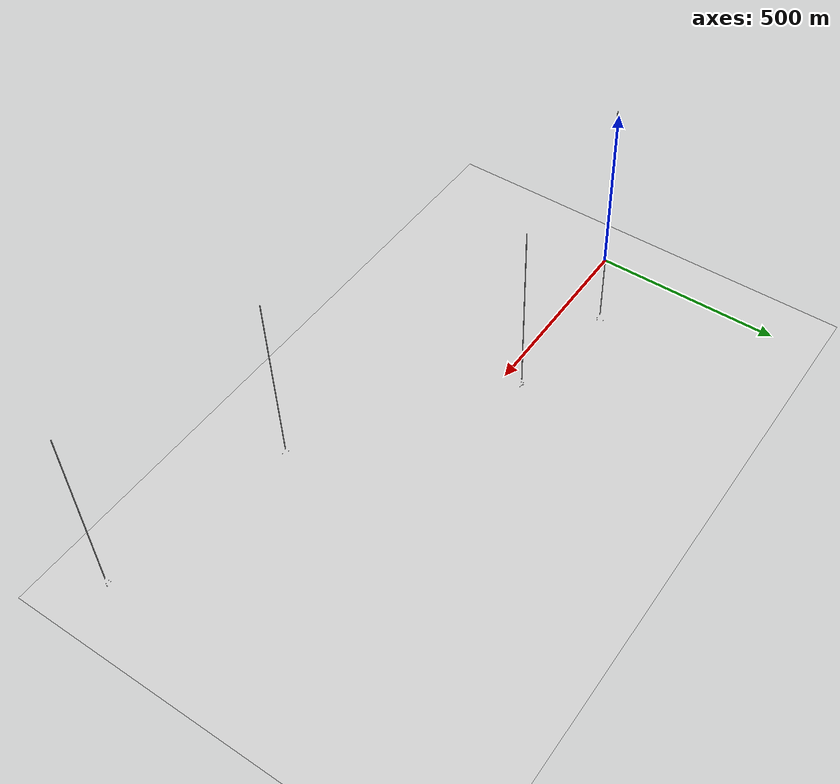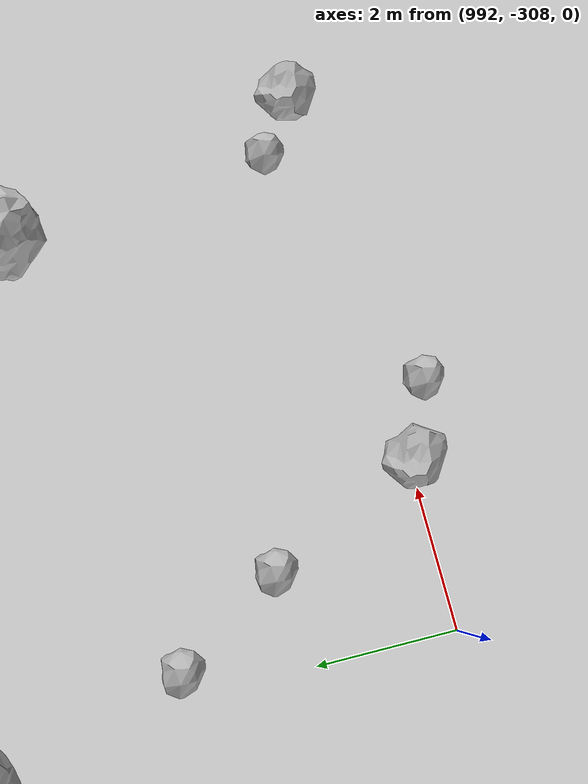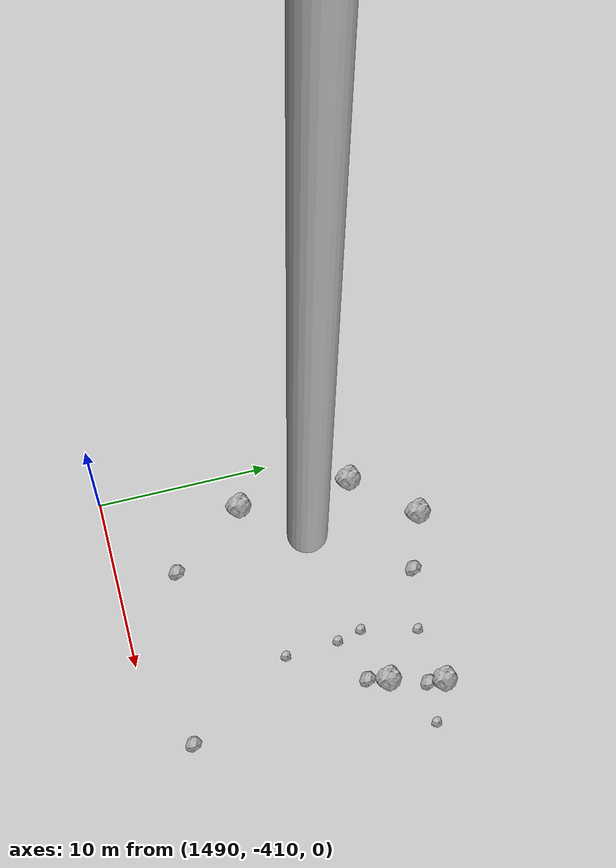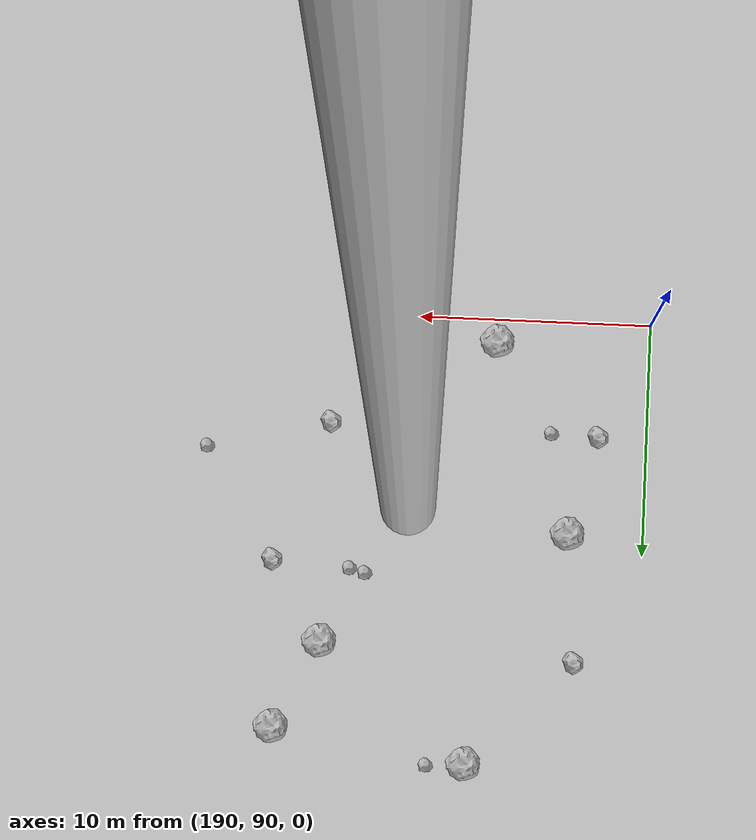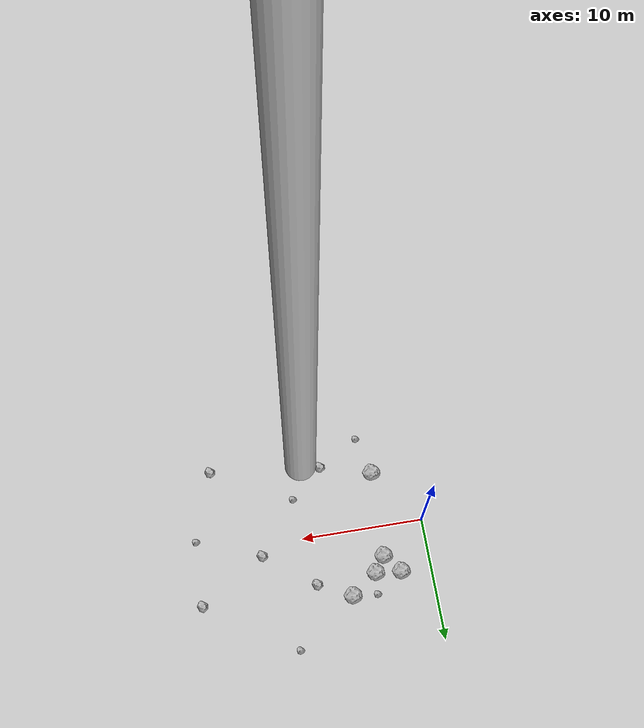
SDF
<?xml version="1.0" ?>
<sdf version="1.6">
  <world name="default">

    <include>
      <uri>model://custom_ground</uri>
    </include>

    <include>
      <uri>model://sun</uri>
    </include>

    <spherical_coordinates>
      <surface_model>EARTH_WGS84</surface_model>
      <latitude_deg>38.161479</latitude_deg>
      <longitude_deg>-122.454630</longitude_deg>
      <elevation>488.0</elevation>
      <heading_deg>90</heading_deg>
    </spherical_coordinates>

    <model name="rock1_0_0">
      <include>
        <uri>model://rock1</uri>
        <pose>4.572853619748891 3.7947015542452753 0.5 0 0 0</pose>
      </include>
    </model>
    <model name="rock1_0_1">
      <include>
        <uri>model://rock1</uri>
        <pose>2.5023378603880175 3.999099683099427 0.5 0 0 0</pose>
      </include>
    </model>
    <model name="rock1_0_2">
      <include>
        <uri>model://rock1</uri>
        <pose>3.686681151769118 2.5030829227830687 0.5 0 0 0</pose>
      </include>
    </model>
    <model name="rock1_0_3">
      <include>
        <uri>model://rock1</uri>
        <pose>3.3944118400449175 -4.6390847969078575 0.5 0 0 0</pose>
      </include>
    </model>
    <model name="rock1_0_4">
      <include>
        <uri>model://rock1</uri>
        <pose>6.734505600800804 5.365693586576592 0.5 0 0 0</pose>
      </include>
    </model>
    <model name="rock2_0_0">
      <include>
        <uri>model://rock2</uri>
        <pose>16.79316029267475 -6.899242191881035 0.3 0 0 0</pose>
      </include>
    </model>
    <model name="rock2_0_1">
      <include>
        <uri>model://rock2</uri>
        <pose>7.595345049754818 -5.85508658687846 0.3 0 0 0</pose>
      </include>
    </model>
    <model name="rock2_0_2">
      <include>
        <uri>model://rock2</uri>
        <pose>9.424452033437575 3.9959151317799027 0.3 0 0 0</pose>
      </include>
    </model>
    <model name="rock2_0_3">
      <include>
        <uri>model://rock2</uri>
        <pose>13.502902633631159 0.9263732171216645 0.3 0 0 0</pose>
      </include>
    </model>
    <model name="rock2_0_4">
      <include>
        <uri>model://rock2</uri>
        <pose>18.882993633867912 4.25743976970101 0.3 0 0 0</pose>
      </include>
    </model>
    <model name="rock3_0_0">
      <include>
        <uri>model://rock3</uri>
        <pose>10.241285209226207 -3.4841964100783063 0.2 0 0 0</pose>
      </include>
    </model>
    <model name="rock3_0_1">
      <include>
        <uri>model://rock3</uri>
        <pose>4.142287087473426 -7.8974524473212675 0.2 0 0 0</pose>
      </include>
    </model>
    <model name="rock3_0_2">
      <include>
        <uri>model://rock3</uri>
        <pose>18.705460818679594 -1.1685540688278895 0.2 0 0 0</pose>
      </include>
    </model>
    <model name="rock3_0_3">
      <include>
        <uri>model://rock3</uri>
        <pose>11.609357218198435 8.980632921697335 0.2 0 0 0</pose>
      </include>
    </model>
    <model name="rock3_0_4">
      <include>
        <uri>model://rock3</uri>
        <pose>4.684560282595296 5.518325599979288 0.2 0 0 0</pose>
      </include>
    </model>
    <model name="rock1_1_0">
      <include>
        <uri>model://rock1</uri>
        <pose>197.33879903890994 109.20686792613427 0.5 0 0 0</pose>
      </include>
    </model>
    <model name="rock1_1_1">
      <include>
        <uri>model://rock1</uri>
        <pose>205.62579757789794 107.9570608748534 0.5 0 0 0</pose>
      </include>
    </model>
    <model name="rock1_1_2">
      <include>
        <uri>model://rock1</uri>
        <pose>203.73503929779775 104.2280103980762 0.5 0 0 0</pose>
      </include>
    </model>
    <model name="rock1_1_3">
      <include>
        <uri>model://rock1</uri>
        <pose>196.6332962633468 90.98120175889336 0.5 0 0 0</pose>
      </include>
    </model>
    <model name="rock1_1_4">
      <include>
        <uri>model://rock1</uri>
        <pose>193.2826925430804 99.17571866383607 0.5 0 0 0</pose>
      </include>
    </model>
    <model name="rock2_1_0">
      <include>
        <uri>model://rock2</uri>
        <pose>205.91114825580303 100.82169980390928 0.3 0 0 0</pose>
      </include>
    </model>
    <model name="rock2_1_1">
      <include>
        <uri>model://rock2</uri>
        <pose>203.646039564077 94.76699944226792 0.3 0 0 0</pose>
      </include>
    </model>
    <model name="rock2_1_2">
      <include>
        <uri>model://rock2</uri>
        <pose>200.08712187103936 94.58864783690761 0.3 0 0 0</pose>
      </include>
    </model>
    <model name="rock2_1_3">
      <include>
        <uri>model://rock2</uri>
        <pose>192.1047630017982 94.95511753643916 0.3 0 0 0</pose>
      </include>
    </model>
    <model name="rock2_1_4">
      <include>
        <uri>model://rock2</uri>
        <pose>192.80161549464796 104.71322801784477 0.3 0 0 0</pose>
      </include>
    </model>
    <model name="rock3_1_0">
      <include>
        <uri>model://rock3</uri>
        <pose>202.54000354377993 101.0337018656278 0.2 0 0 0</pose>
      </include>
    </model>
    <model name="rock3_1_1">
      <include>
        <uri>model://rock3</uri>
        <pose>194.1004502799331 94.84376314294144 0.2 0 0 0</pose>
      </include>
    </model>
    <model name="rock3_1_2">
      <include>
        <uri>model://rock3</uri>
        <pose>201.87890635364013 101.20773182509801 0.2 0 0 0</pose>
      </include>
    </model>
    <model name="rock3_1_3">
      <include>
        <uri>model://rock3</uri>
        <pose>208.91233131179575 96.00648951201913 0.2 0 0 0</pose>
      </include>
    </model>
    <model name="rock3_1_4">
      <include>
        <uri>model://rock3</uri>
        <pose>198.91607224893477 109.32489673063029 0.2 0 0 0</pose>
      </include>
    </model>
    <model name="rock1_2_0">
      <include>
        <uri>model://rock1</uri>
        <pose>493.0084111873994 51.405448430762924 0.5 0 0 0</pose>
      </include>
    </model>
    <model name="rock1_2_1">
      <include>
        <uri>model://rock1</uri>
        <pose>498.45149406385383 55.13356676518181 0.5 0 0 0</pose>
      </include>
    </model>
    <model name="rock1_2_2">
      <include>
        <uri>model://rock1</uri>
        <pose>493.3893207697124 45.62249121252375 0.5 0 0 0</pose>
      </include>
    </model>
    <model name="rock1_2_3">
      <include>
        <uri>model://rock1</uri>
        <pose>504.0296599376839 51.76781417679331 0.5 0 0 0</pose>
      </include>
    </model>
    <model name="rock1_2_4">
      <include>
        <uri>model://rock1</uri>
        <pose>509.25856807976567 51.03354844627708 0.5 0 0 0</pose>
      </include>
    </model>
    <model name="rock2_2_0">
      <include>
        <uri>model://rock2</uri>
        <pose>496.84472757341547 59.31164500207769 0.3 0 0 0</pose>
      </include>
    </model>
    <model name="rock2_2_1">
      <include>
        <uri>model://rock2</uri>
        <pose>501.9718642661746 47.38498936908213 0.3 0 0 0</pose>
      </include>
    </model>
    <model name="rock2_2_2">
      <include>
        <uri>model://rock2</uri>
        <pose>490.87757521772505 52.02997825935623 0.3 0 0 0</pose>
      </include>
    </model>
    <model name="rock2_2_3">
      <include>
        <uri>model://rock2</uri>
        <pose>494.5114279240689 56.59342996209182 0.3 0 0 0</pose>
      </include>
    </model>
    <model name="rock2_2_4">
      <include>
        <uri>model://rock2</uri>
        <pose>494.0045056563836 55.720374653498794 0.3 0 0 0</pose>
      </include>
    </model>
    <model name="rock3_2_0">
      <include>
        <uri>model://rock3</uri>
        <pose>508.70359122983615 49.05196587222025 0.2 0 0 0</pose>
      </include>
    </model>
    <model name="rock3_2_1">
      <include>
        <uri>model://rock3</uri>
        <pose>493.9234395731835 45.77591892842755 0.2 0 0 0</pose>
      </include>
    </model>
    <model name="rock3_2_2">
      <include>
        <uri>model://rock3</uri>
        <pose>499.58228739723785 53.000154075435574 0.2 0 0 0</pose>
      </include>
    </model>
    <model name="rock3_2_3">
      <include>
        <uri>model://rock3</uri>
        <pose>505.1436291411496 43.79780963210986 0.2 0 0 0</pose>
      </include>
    </model>
    <model name="rock3_2_4">
      <include>
        <uri>model://rock3</uri>
        <pose>509.00619373310286 49.84317005892638 0.2 0 0 0</pose>
      </include>
    </model>
    <model name="rock1_3_0">
      <include>
        <uri>model://rock1</uri>
        <pose>1004.4210818825725 -307.58064882571585 0.5 0 0 0</pose>
      </include>
    </model>
    <model name="rock1_3_1">
      <include>
        <uri>model://rock1</uri>
        <pose>991.7685620388102 -301.1608810223319 0.5 0 0 0</pose>
      </include>
    </model>
    <model name="rock1_3_2">
      <include>
        <uri>model://rock1</uri>
        <pose>999.0992958638336 -302.8535612148285 0.5 0 0 0</pose>
      </include>
    </model>
    <model name="rock1_3_3">
      <include>
        <uri>model://rock1</uri>
        <pose>991.7732047967418 -297.40266610844907 0.5 0 0 0</pose>
      </include>
    </model>
    <model name="rock1_3_4">
      <include>
        <uri>model://rock1</uri>
        <pose>1003.5579893746534 -297.187757191369 0.5 0 0 0</pose>
      </include>
    </model>
    <model name="rock2_3_0">
      <include>
        <uri>model://rock2</uri>
        <pose>994.4395391246148 -308.0396903878768 0.3 0 0 0</pose>
      </include>
    </model>
    <model name="rock2_3_1">
      <include>
        <uri>model://rock2</uri>
        <pose>1000.3577088948323 -307.6334375870922 0.3 0 0 0</pose>
      </include>
    </model>
    <model name="rock2_3_2">
      <include>
        <uri>model://rock2</uri>
        <pose>992.023038959452 -296.892902526653 0.3 0 0 0</pose>
      </include>
    </model>
    <model name="rock2_3_3">
      <include>
        <uri>model://rock2</uri>
        <pose>990.1290048804742 -300.6254468139199 0.3 0 0 0</pose>
      </include>
    </model>
    <model name="rock2_3_4">
      <include>
        <uri>model://rock2</uri>
        <pose>1000.6592485859178 -291.18596538122205 0.3 0 0 0</pose>
      </include>
    </model>
    <model name="rock3_3_0">
      <include>
        <uri>model://rock3</uri>
        <pose>992.3726276814414 -304.23814295316697 0.2 0 0 0</pose>
      </include>
    </model>
    <model name="rock3_3_1">
      <include>
        <uri>model://rock3</uri>
        <pose>1004.115901809087 -293.36995286640285 0.2 0 0 0</pose>
      </include>
    </model>
    <model name="rock3_3_2">
      <include>
        <uri>model://rock3</uri>
        <pose>995.5057565639657 -308.5196314409666 0.2 0 0 0</pose>
      </include>
    </model>
    <model name="rock3_3_3">
      <include>
        <uri>model://rock3</uri>
        <pose>993.3532044297605 -305.7805211109887 0.2 0 0 0</pose>
      </include>
    </model>
    <model name="rock3_3_4">
      <include>
        <uri>model://rock3</uri>
        <pose>999.4687522906365 -307.0981998358347 0.2 0 0 0</pose>
      </include>
    </model>
    <model name="rock1_4_0">
      <include>
        <uri>model://rock1</uri>
        <pose>1492.10493946193 -402.0848654390967 0.5 0 0 0</pose>
      </include>
    </model>
    <model name="rock1_4_1">
      <include>
        <uri>model://rock1</uri>
        <pose>1504.929369981741 -392.91709334708133 0.5 0 0 0</pose>
      </include>
    </model>
    <model name="rock1_4_2">
      <include>
        <uri>model://rock1</uri>
        <pose>1491.9432640421717 -395.4145567713497 0.5 0 0 0</pose>
      </include>
    </model>
    <model name="rock1_4_3">
      <include>
        <uri>model://rock1</uri>
        <pose>1504.1629569373247 -396.0323662875444 0.5 0 0 0</pose>
      </include>
    </model>
    <model name="rock1_4_4">
      <include>
        <uri>model://rock1</uri>
        <pose>1494.8683750992739 -391.9294362101789 0.5 0 0 0</pose>
      </include>
    </model>
    <model name="rock2_4_0">
      <include>
        <uri>model://rock2</uri>
        <pose>1495.0958204447143 -406.48562754778436 0.3 0 0 0</pose>
      </include>
    </model>
    <model name="rock2_4_1">
      <include>
        <uri>model://rock2</uri>
        <pose>1498.0491687476442 -393.019297684536 0.3 0 0 0</pose>
      </include>
    </model>
    <model name="rock2_4_2">
      <include>
        <uri>model://rock2</uri>
        <pose>1504.822565652803 -393.83356652102896 0.3 0 0 0</pose>
      </include>
    </model>
    <model name="rock2_4_3">
      <include>
        <uri>model://rock2</uri>
        <pose>1505.2102941861954 -407.7530337014717 0.3 0 0 0</pose>
      </include>
    </model>
    <model name="rock2_4_4">
      <include>
        <uri>model://rock2</uri>
        <pose>1503.8403781886866 -397.19760762121723 0.3 0 0 0</pose>
      </include>
    </model>
    <model name="rock3_4_0">
      <include>
        <uri>model://rock3</uri>
        <pose>1507.171786178849 -393.9687854072672 0.2 0 0 0</pose>
      </include>
    </model>
    <model name="rock3_4_1">
      <include>
        <uri>model://rock3</uri>
        <pose>1501.6098833614649 -393.67092701885935 0.2 0 0 0</pose>
      </include>
    </model>
    <model name="rock3_4_2">
      <include>
        <uri>model://rock3</uri>
        <pose>1500.8891987011734 -396.91145800641567 0.2 0 0 0</pose>
      </include>
    </model>
    <model name="rock3_4_3">
      <include>
        <uri>model://rock3</uri>
        <pose>1501.418141110295 -401.4752899443075 0.2 0 0 0</pose>
      </include>
    </model>
    <model name="rock3_4_4">
      <include>
        <uri>model://rock3</uri>
        <pose>1501.2388976649197 -398.3455792395497 0.2 0 0 0</pose>
      </include>
    </model>

    <model name="cylinder_1">
      <static>true</static>
      <link name="link">
        <visual name="visual">
          <geometry>
            <cylinder>
              <radius>1</radius>
              <length>500</length>
            </cylinder>
          </geometry>
        </visual>
      </link>
      <pose>10 0 270 0 0 0</pose>
    </model>

    <model name="cylinder_2">
      <static>true</static>
      <link name="link">
        <visual name="visual">
          <geometry>
            <cylinder>
              <radius>1</radius>
              <length>500</length>
            </cylinder>
          </geometry>
        </visual>
      </link>
      <pose>200 100 270 0 0 0</pose>
    </model>

    <model name="cylinder_3">
      <static>true</static>
      <link name="link">
        <visual name="visual">
          <geometry>
            <cylinder>
              <radius>1</radius>
              <length>500</length>
            </cylinder>
          </geometry>
        </visual>
      </link>
      <pose>500 50 270 0 0 0</pose>
    </model>

    <model name="cylinder_4">
      <static>true</static>
      <link name="link">
        <visual name="visual">
          <geometry>
            <cylinder>
              <radius>1</radius>
              <length>500</length>
            </cylinder>
          </geometry>
        </visual>
      </link>
      <pose>1000 -300 270 0 0 0</pose>
    </model>

    <model name="cylinder_5">
      <static>true</static>
      <link name="link">
        <visual name="visual">
          <geometry>
            <cylinder>
              <radius>1</radius>
              <length>500</length>
            </cylinder>
          </geometry>
        </visual>
      </link>
      <pose>1500 -400 270 0 0 0</pose>
    </model>

  </world>
</sdf>

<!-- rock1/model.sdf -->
<sdf version="1.6">
  <model name="rock1">
    <static>true</static> <!-- Set to true if the model should not move -->
    <pose>0 0 0 0 0 0</pose>

    <!--z offset is 0.5 for full scale-->

    <link name="link">
      <collision name="rock1_collision">
        <geometry>
          <mesh>
            <uri>model://meshes/rock1.dae</uri>
          </mesh>
        </geometry>
      </collision>
      <visual name="rock1_visual">
        <geometry>
          <mesh>
            <uri>model://meshes/rock1.dae</uri>
          </mesh>
        </geometry>
        <material>
          <script>
            <uri>model://materials/scripts/sand_pebbles.material</uri>
            <name>custom_ground/Image</name>
          </script>
        </material>
      </visual>
    </link>
  </model>
</sdf>

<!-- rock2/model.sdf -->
<sdf version="1.6">
  <model name="rock2">
    <static>true</static> <!-- Set to true if the model should not move -->
    <pose>0 0 0 0 0 0</pose>

    <!--z offset is 0.3 for full scale-->

    <link name="link">
      <collision name="rock2_collision">
        <geometry>
          <mesh>
            <uri>model://meshes/rock2.dae</uri>
          </mesh>
        </geometry>
      </collision>
      <visual name="rock2_visual">
        <geometry>
          <mesh>
            <uri>model://meshes/rock2.dae</uri>
          </mesh>
        </geometry>
        <material>
          <script>
            <uri>model://materials/scripts/sand_pebbles.material</uri>
            <name>custom_ground/Image</name>
          </script>
        </material>
      </visual>
    </link>
  </model>
</sdf>

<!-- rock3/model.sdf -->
<sdf version="1.6">
  <model name="rock3">
    <static>true</static> <!-- Set to true if the model should not move -->
    <pose>0 0 0 0 0 0</pose>

    <!--z offset is 0.2 for full scale-->

    <link name="link">
      <collision name="rock3_collision">
        <geometry>
          <mesh>
            <uri>model://meshes/rock3.dae</uri>
          </mesh>
        </geometry>
      </collision>
      <visual name="rock3_visual">
        <geometry>
          <mesh>
            <uri>model://meshes/rock3.dae</uri>
          </mesh>
        </geometry>
        <material>
          <script>
            <uri>model://materials/scripts/sand_pebbles.material</uri>
            <name>custom_ground/Image</name>
          </script>
        </material>
      </visual>
    </link>
  </model>
</sdf>

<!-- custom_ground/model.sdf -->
<sdf version="1.6">
  <model name="custom_ground">
    <static>true</static> <!-- Ground is static and immovable -->
    <link name="ground_link">
      <pose>240 0 0 0 0 0</pose> <!-- Position and orientation relative to the world -->
      <!-- Visual Representation -->
      <visual name="ground_visual">
        <geometry>
          <plane>
            <normal>0 0 1</normal> <!-- Upward facing plane -->
            <size>500 500</size> <!-- Size of the plane -->
          </plane>
        </geometry>
        <material>
          <script>
            <uri>model://materials/scripts/sand_pebbles.material</uri>
            <name>custom_ground/Image</name>
          </script>
        </material>
      </visual>

      <!-- Collision Representation -->
      <collision name="ground_collision">
        <geometry>
          <plane>
            <normal>0 0 1</normal>
            <size>100 100</size>
          </plane>
        </geometry>
      </collision>

    </link>
  </model>
</sdf>
